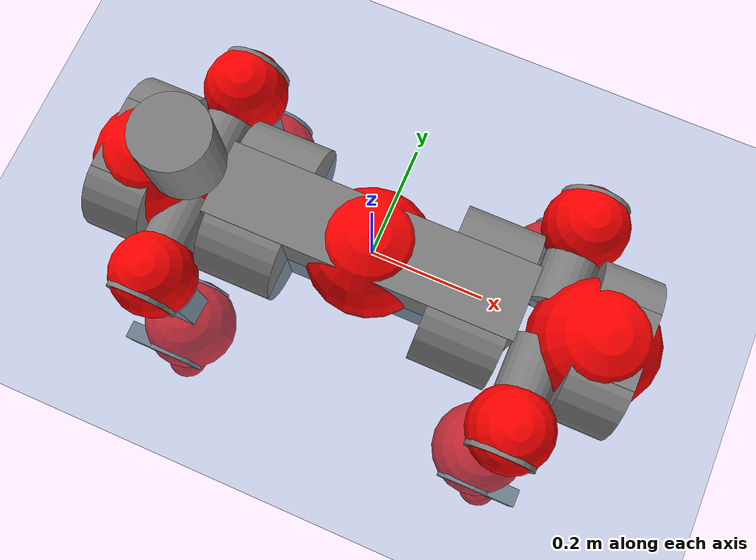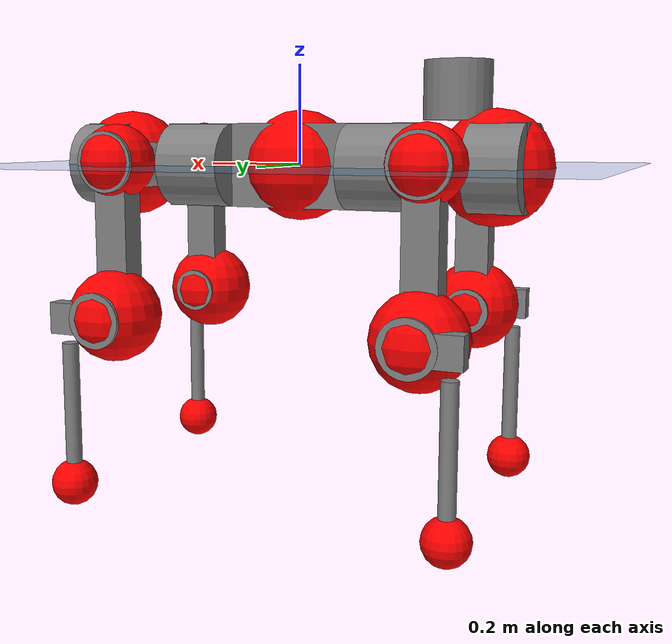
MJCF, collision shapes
<mujoco model="anymal_c">
  <compiler angle="radian" assetdir="assets" balanceinertia="true" inertiafromgeom="false"/>

  <option timestep="0.005" density="1.2" viscosity="2e-05"/>

  <size nkey="1"/>

  <visual>
    <quality shadowsize="8192"/>
    <map shadowclip="0.5"/>
  </visual>

  <default>
    <default class="/">
      <material specular="0" shininess="0.25"/>
      <geom contype="0" conaffinity="0" group="1" solref="-1000 -80"/>
      <site size="0.01 0.005 0.005" group="5"/>
      <general forcelimited="true" forcerange="-80 80" biastype="affine" gainprm="80" biasprm="0 -80 -2"/>
      <default class="anymal_c">
        <joint armature="0.01" damping="0.01" frictionloss="0.1"/>
        <default class="visual">
          <geom type="mesh" group="2"/>
          <default class="visual_zflip"/>
        </default>
        <default class="collision">
          <geom type="cylinder" group="3"/>
          <default class="foot">
            <geom size="0.03 0 0" type="sphere" condim="6" priority="1" friction="0.8 0.02 0.01" solimp="0.015 1 0.03"/>
          </default>
        </default>
      </default>
      <default class="reward_collision_sphere">
        <geom group="5" rgba="1 0 0 1"/>
      </default>
    </default>
  </default>

  <asset>
    <texture type="skybox" colorspace="auto" name="//unnamed_texture_0" builtin="gradient" rgb1="0.95 0.95 0.95" rgb2="0.95 0.95 0.95" width="100" height="600"/>
    <texture type="2d" colorspace="auto" name="texplane" builtin="checker" rgb1="0.345 0.575 0.748" rgb2="0.345 0.575 0.748" markrgb="1 1 1" width="512" height="512"/>
    <texture type="2d" colorspace="linear" name="base" file="base.png"/>
    <texture type="2d" colorspace="linear" name="top_shell" file="top_shell.png"/>
    <texture type="2d" colorspace="linear" name="bottom_shell" file="bottom_shell.png"/>
    <texture type="2d" colorspace="linear" name="remote" file="remote.png"/>
    <texture type="2d" colorspace="linear" name="hatch" file="hatch.png"/>
    <texture type="2d" colorspace="linear" name="handle" file="handle.png"/>
    <texture type="2d" colorspace="linear" name="face" file="face.png"/>
    <texture type="2d" colorspace="linear" name="battery" file="battery.png"/>
    <texture type="2d" colorspace="linear" name="lidar_cage" file="lidar_cage.png"/>
    <texture type="2d" colorspace="linear" name="depth_camera" file="depth_camera.png"/>
    <texture type="2d" colorspace="linear" name="wide_angle_camera" file="wide_angle_camera.png"/>
    <texture type="2d" colorspace="linear" name="lidar" file="lidar.png"/>
    <texture type="2d" colorspace="linear" name="drive" file="drive.png"/>
    <texture type="2d" colorspace="linear" name="hip_l" file="hip_l.png"/>
    <texture type="2d" colorspace="linear" name="shank_l" file="shank_l.png"/>
    <texture type="2d" colorspace="linear" name="foot" file="foot.png"/>
    <texture type="2d" colorspace="linear" name="thigh" file="thigh.png"/>
    <texture type="2d" colorspace="linear" name="shank_r" file="shank_r.png"/>
    <texture type="2d" colorspace="linear" name="hip_r" file="hip_r.png"/>
    <material name="MatPlane" class="/" texture="texplane" texuniform="true" texrepeat="2 2" specular="0.9" shininess="0.5"/>
    <material name="black_plastic" class="/" rgba="0.007 0.007 0.007 1"/>
    <material name="green" class="/" rgba="0.052 0.178 0.033 1"/>
    <material name="red" class="/" rgba="0.178 0.006 0.005 1"/>
    <material name="yellow" class="/" rgba="0.178 0.119 0.006 1"/>
    <material name="lwl" class="/" rgba="0.8 0.8 0.8 1"/>
    <material name="base" class="/" texture="base"/>
    <material name="top_shell" class="/" texture="top_shell"/>
    <material name="bottom_shell" class="/" texture="bottom_shell"/>
    <material name="hip_l" class="/" texture="hip_l"/>
    <material name="thigh" class="/" texture="thigh"/>
    <material name="shank_l" class="/" texture="shank_l"/>
    <material name="foot" class="/" texture="foot"/>
    <material name="hip_r" class="/" texture="hip_r"/>
    <material name="shank" class="/" texture="shank_r"/>
    <material name="hatch" class="/" texture="hatch"/>
    <material name="remote" class="/" texture="remote"/>
    <material name="handle" class="/" texture="handle"/>
    <material name="face" class="/" texture="face"/>
    <material name="depth_camera" class="/" texture="depth_camera"/>
    <material name="wide_angle_camera" class="/" texture="wide_angle_camera"/>
    <material name="battery" class="/" texture="battery"/>
    <material name="lidar_cage" class="/" texture="lidar_cage"/>
    <material name="lidar" class="/" texture="lidar"/>
    <material name="drive" class="/" texture="drive"/>
    <mesh name="base_0" class="/" file="base_0.obj"/>
    <mesh name="base_1" class="/" file="base_1.obj"/>
    <mesh name="base_2" class="/" file="base_2.obj"/>
    <mesh name="base_3" class="/" file="base_3.obj"/>
    <mesh name="base_4" class="/" file="base_4.obj"/>
    <mesh name="base_5" class="/" file="base_5.obj"/>
    <mesh name="top_shell" class="/" file="top_shell.obj"/>
    <mesh name="bottom_shell" class="/" file="bottom_shell.obj"/>
    <mesh name="remote" class="/" file="remote.obj"/>
    <mesh name="handle" class="/" file="handle.obj"/>
    <mesh name="face" class="/" file="face.obj"/>
    <mesh name="wide_angle_camera" class="/" file="wide_angle_camera.obj"/>
    <mesh name="depth_camera" class="/" file="depth_camera.obj"/>
    <mesh name="battery" class="/" file="battery.obj"/>
    <mesh name="lidar_cage" class="/" file="lidar_cage.obj"/>
    <mesh name="lidar" class="/" file="lidar.obj"/>
    <mesh name="drive" class="/" file="drive.obj"/>
    <mesh name="hip_l" class="/" file="hip_l.obj"/>
    <mesh name="thigh" class="/" file="thigh.obj"/>
    <mesh name="shank_l" class="/" file="shank_l.obj"/>
    <mesh name="foot" class="/" file="foot.obj"/>
    <mesh name="hip_r" class="/" file="hip_r.obj"/>
    <mesh name="hatch" class="/" file="hatch.obj"/>
    <mesh name="shank_r" class="/" file="shank_r.obj"/>
  </asset>

  <worldbody>
    <geom name="floor" class="/" size="100 100 0.125" type="plane" group="0" material="MatPlane"/>
    <light name="toplight_shadow" class="/" pos="0 0 5" dir="0.0990148 0.0990148 -0.990148" type="directional" ambient="0.04 0.04 0.04" diffuse="0.55 0.55 0.55" specular="0.12 0.12 0.12"/>
    <light name="toplight_fill" class="/" pos="0 0 5" dir="0.0990148 0.0990148 -0.990148" type="directional" castshadow="false" ambient="0.04 0.04 0.04" diffuse="0.3 0.3 0.3" specular="0.08 0.08 0.08"/>
    <body name="trunk" childclass="anymal_c" pos="-0.00267638 -0.00107191 -0.00172218" quat="0.999999 0.000834811 -0.000342609 -0.000800803">
      <inertial pos="5.48735e-05 0.00168089 0.0537813" quat="0.491109 0.495244 0.506439 0.507015" mass="15.2777" diaginertia="0.35854 0.227719 0.332472"/>
      <joint name="//unnamed_joint_0" type="free" armature="0" damping="0" frictionloss="0"/>
      <geom name="//unnamed_geom_1" class="visual" material="green" mesh="base_0"/>
      <geom name="//unnamed_geom_2" class="visual" material="yellow" mesh="base_1"/>
      <geom name="//unnamed_geom_3" class="visual" material="red" mesh="base_2"/>
      <geom name="//unnamed_geom_4" class="visual" material="black_plastic" mesh="base_3"/>
      <geom name="//unnamed_geom_5" class="visual" material="lwl" mesh="base_4"/>
      <geom name="//unnamed_geom_6" class="visual" material="base" mesh="base_5"/>
      <geom name="trunk_1" class="collision" size="0.270107 0.0651982 0.0838263" type="box"/>
      <geom name="trunk_2" class="collision" size="0.0838263 0.0675267" pos="0.193097 0.0573974 0" quat="0.707107 0 0.707107 0"/>
      <geom name="trunk_3" class="collision" size="0.0838263 0.0675267" pos="-0.193097 0.0573974 0" quat="0.707107 0 0.707107 0"/>
      <geom name="trunk_4" class="collision" size="0.0838263 0.0675267" pos="0.193097 -0.0573974 0" quat="0.707107 0 0.707107 0"/>
      <geom name="trunk_5" class="collision" size="0.0838263 0.0675267" pos="-0.193097 -0.0573974 0" quat="0.707107 0 0.707107 0"/>
      <geom name="//unnamed_geom_12" class="visual" material="top_shell" mesh="top_shell"/>
      <geom name="//unnamed_geom_13" class="visual" material="bottom_shell" mesh="bottom_shell"/>
      <geom name="//unnamed_geom_14" class="visual" material="remote" mesh="remote"/>
      <geom name="//unnamed_geom_15" class="visual" material="handle" mesh="handle"/>
      <geom name="//unnamed_geom_16" class="visual" pos="0.367995 0 0" quat="1 0 0 0" material="face" mesh="face"/>
      <geom name="trunk_6" class="collision" size="0.0512272 0.0651982 0.0838263" pos="0.416824 0 0" type="box"/>
      <geom name="//unnamed_geom_18" class="collision" size="0.0838263 0.0512272" pos="0.416824 0.0573974 0" quat="0.707107 0 0.707107 0"/>
      <geom name="//unnamed_geom_19" class="collision" size="0.0838263 0.0512272" pos="0.416824 -0.0573974 0" quat="0.707107 0 0.707107 0"/>
      <geom name="//unnamed_geom_20" class="visual" pos="0.409863 0 -0.0332338" quat="0.965926 0 0.258819 0" material="depth_camera" mesh="depth_camera"/>
      <geom name="//unnamed_geom_21" class="visual" pos="0.455444 0 0.016264" material="wide_angle_camera" mesh="wide_angle_camera"/>
      <geom name="//unnamed_geom_22" class="visual_zflip" pos="-0.367995 0 0" quat="0 0 0 1" material="face" mesh="face"/>
      <geom name="trunk_7" class="collision" size="0.0512272 0.0651982 0.0838263" pos="-0.416824 0 0" quat="0 0 0 1" type="box"/>
      <geom name="//unnamed_geom_24" class="collision" size="0.0838263 0.0512272" pos="-0.416824 -0.0573974 0" quat="0 -0.707107 0 0.707107"/>
      <geom name="//unnamed_geom_25" class="collision" size="0.0838263 0.0512272" pos="-0.416824 0.0573974 0" quat="0 -0.707107 0 0.707107"/>
      <geom name="//unnamed_geom_26" class="visual" pos="-0.409863 0 -0.0332338" quat="0 -0.258819 0 0.965926" material="depth_camera" mesh="depth_camera"/>
      <geom name="//unnamed_geom_27" class="visual_zflip" pos="-0.455444 0 0.016264" quat="0 0 0 1" material="wide_angle_camera" mesh="wide_angle_camera"/>
      <geom name="//unnamed_geom_28" class="visual" material="battery" mesh="battery"/>
      <geom name="//unnamed_geom_29" class="visual" pos="0 0.0618123 0.0300515" quat="0.683013 -0.183013 0.183013 0.683013" material="depth_camera" mesh="depth_camera"/>
      <geom name="//unnamed_geom_30" class="visual" pos="0 -0.0618123 0.0300515" quat="0.683013 0.183013 0.183013 -0.683013" material="depth_camera" mesh="depth_camera"/>
      <geom name="//unnamed_geom_31" class="visual" pos="-0.323161 0 0.0798535" quat="1 0 0 0" material="lidar_cage" mesh="lidar_cage"/>
      <geom name="trunk_8" class="collision" size="0.0651982 0.0558842" pos="-0.323161 0 0.14504"/>
      <geom name="//unnamed_geom_33" class="visual" pos="-0.323161 -2.66534e-05 0.154492" quat="0.707107 0 0 -0.707107" material="lidar" mesh="lidar"/>
      <geom name="//unnamed_geom_34" class="visual" pos="0.266253 0.0853707 -4.59681e-09" quat="0.258819 0.965926 0 0" material="drive" mesh="drive"/>
      <geom name="//unnamed_geom_35" class="visual" pos="0.266253 -0.0853707 4.59681e-09" quat="0.258819 -0.965926 0 0" material="drive" mesh="drive"/>
      <geom name="//unnamed_geom_36" class="visual" pos="-0.266253 0.0853707 4.59681e-09" quat="0 0 0.965926 -0.258819" material="drive" mesh="drive"/>
      <geom name="//unnamed_geom_37" class="visual" pos="-0.266253 -0.0853707 -4.59681e-09" quat="0 0 -0.965926 -0.258819" material="drive" mesh="drive"/>
      <geom name="//unnamed_geom_38" class="visual" pos="0.102985 0 0.0793103" quat="1 0 0 0" material="hatch" mesh="hatch"/>
      <geom name="//unnamed_geom_39" class="reward_collision_sphere" size="0.111768"/>
      <geom name="//unnamed_geom_40" class="reward_collision_sphere" size="0.111768" pos="0.399512 0 0"/>
      <geom name="//unnamed_geom_41" class="reward_collision_sphere" size="0.111768" pos="-0.399512 0 0"/>
      <site name="imu" pos="0.231027 -0.00306413 0.0476279" size="0.00931403"/>
      <camera name="track" pos="0 -1.63992 0" quat="0.707107 0.707107 0 0" mode="trackcom"/>
      <camera name="ego_camera" pos="0.399512 0 -0.0434577" quat="-0.5 -0.5 0.5 0.5"/>
      <body name="LF_HIP" pos="0.267151 0.0859722 -0.00258536" quat="0.259016 0.965872 -0.000679533 -0.00101745">
        <inertial pos="0.0486179 -0.0127931 -0.00850321" quat="-0.130127 0.718566 -0.13677 0.669346" mass="2.32133" diaginertia="0.00332908 0.00187981 0.00525434"/>
        <joint name="LF_HAA" pos="0 0 0" axis="0.999907 0.013668 6.0534e-05" stiffness="0.00173623" range="-0.667465 0.491799" armature="0.0106825" damping="0.00501857" frictionloss="0.0981573"/>
        <geom name="//unnamed_geom_42" class="visual" pos="0 -0.00027041 4.44146e-05" quat="0.258819 -0.965926 0 0" material="hip_l" mesh="hip_l"/>
        <geom name="//unnamed_geom_43" class="visual" pos="0.0531795 -0.0636397 -0.0387134" quat="0.183013 -0.683013 0.683013 0.183013" material="drive" mesh="drive"/>
        <geom name="//unnamed_geom_44" class="collision" size="0.0465701 0.0651982" pos="0.0531795 -0.00980658 -0.00750188" quat="-0.353553 -0.612372 0.612372 -0.353553"/>
        <body name="LF_THIGH" pos="0.0533778 -0.0596926 -0.0466515" quat="0.183058 -0.683051 0.682889 0.183288">
          <inertial pos="0.0272005 -0.00249128 -0.268849" quat="0.993189 -0.00573566 -0.0808477 0.0837065" mass="2.51086" diaginertia="0.0164553 0.0107973 0.00625404"/>
          <joint name="LF_HFE" pos="0 0 0" axis="1 0.000869002 -0.000437597" stiffness="0.00566923" range="-3.14664 3.18368" armature="0.00852326" damping="0" frictionloss="0.0932495"/>
          <geom name="//unnamed_geom_45" class="visual" pos="0.00134979 2.12696e-06 0" quat="0.707107 0 0 -0.707107" material="thigh" mesh="thigh"/>
          <geom name="//unnamed_geom_46" class="collision" size="0.0605412 0.0372561" pos="0.0355122 0 0" quat="0.5 0.5 -0.5 -0.5"/>
          <geom name="//unnamed_geom_47" class="collision" size="0.0349276 0.0279421 0.13162" pos="0.0266341 0 -0.15353" quat="0.707107 0 0 -0.707107" type="box"/>
          <geom name="//unnamed_geom_48" class="visual" pos="0.0890468 0 -0.309636" quat="1 0 0 0" material="drive" mesh="drive"/>
          <geom name="//unnamed_geom_49" class="collision" size="0.0465701 0.0651982" pos="0.0269005 0 -0.309636" quat="0.707107 0 0.707107 0"/>
          <geom name="//unnamed_geom_50" class="reward_collision_sphere" size="0.0745122" pos="0.0221951 0 0"/>
          <body name="LF_SHANK" pos="0.0907694 0.00183581 -0.307165" quat="1 6.83447e-05 6.44609e-05 5.39273e-05">
            <inertial pos="0.00497957 -0.052167 -0.0851242" quat="0.992853 -0.11681 -0.00191795 -0.0243859" mass="0.494177" diaginertia="0.00582701 0.00347693 0.00169833"/>
            <joint name="LF_KFE" pos="0 0 0" axis="0.999999 -0.000805918 -0.00145161" range="-3.0901 3.08515" armature="0.00917047" damping="0.00982986" frictionloss="0.0978805"/>
            <geom name="//unnamed_geom_51" class="visual" pos="0.000440138 0.00234684 0" quat="0.707107 0 0 -0.707107" material="shank_l" mesh="shank_l"/>
            <geom name="LF_kfe_act" class="collision" size="0.0558842 0.0186281" pos="0.0177561 0 0" quat="0.5 0.5 -0.5 -0.5"/>
            <geom name="//unnamed_geom_53" class="collision" size="0.0535547 0.0314348 0.0176967" pos="0.0177561 -0.047147 0" quat="0.5 0.5 -0.5 -0.5" type="box"/>
            <geom name="//unnamed_geom_54" class="visual" pos="0.0115857 -0.0713594 -0.367185" quat="0.382683 0 0 -0.92388" material="foot" mesh="foot"/>
            <geom name="LF_calf" class="collision" size="0.0162996 0.131563" pos="0.0115858 -0.0721157 -0.183592" quat="0.707107 0 0 -0.707107"/>
            <geom name="LF_foot" class="foot" size="0.0267612" pos="0.0115858 -0.0721157 -0.34274" quat="0.707107 0 0 -0.707107"/>
            <geom name="//unnamed_geom_57" class="reward_collision_sphere" size="0.0931403" pos="-0.0443902 0 0"/>
            <geom name="//unnamed_geom_58" class="reward_collision_sphere" size="0.0465701" pos="0.0115858 -0.0721157 -0.34274"/>
            <site name="LF_foot" class="foot" pos="0.0115858 -0.0721157 -0.34274" quat="0.707107 0 0 -0.707107" size="0.00931403"/>
          </body>
        </body>
      </body>
      <body name="RF_HIP" pos="0.268658 -0.0839363 0.00271542" quat="0.258819 -0.965926 1.27973e-06 -3.30411e-06">
        <inertial pos="0.0508609 0.0105227 -0.00859561" quat="0.136845 0.688144 0.127348 0.701081" mass="2.32395" diaginertia="0.00325449 0.00190366 0.00507033"/>
        <joint name="RF_HAA" pos="0 0 0" axis="0.999997 0.002206 -0.0011326" stiffness="0.000402099" range="-0.438975 0.7179" armature="0.00935875" damping="0.00960137" frictionloss="0.0945598"/>
        <geom name="//unnamed_geom_59" class="visual" pos="0 0.000270407 4.44144e-05" quat="0.258819 0.965926 0 0" material="hip_r" mesh="hip_r"/>
        <geom name="//unnamed_geom_60" class="visual" pos="0.0531795 0.0636397 -0.0387134" quat="0.183013 0.683013 0.683013 -0.183013" material="drive" mesh="drive"/>
        <geom name="//unnamed_geom_61" class="collision" size="0.0465701 0.0651982" pos="0.0531795 0.00980658 -0.00750188" quat="-0.353553 0.612372 0.612372 0.353553"/>
        <body name="RF_THIGH" pos="0.0550889 0.0618223 -0.0487565" quat="0.183103 0.683091 0.68294 -0.182899">
          <inertial pos="0.0277568 4.83196e-06 -0.26915" quat="0.992551 -0.000504854 -0.0759225 0.0952836" mass="2.55949" diaginertia="0.0168069 0.0114105 0.00652106"/>
          <joint name="RF_HFE" pos="0 0 0" axis="0.999996 0.000777735 0.00261994" stiffness="0.00511516" range="-3.19242 3.19471" armature="0.00811703" damping="0.00848819" frictionloss="0.0896627"/>
          <geom name="//unnamed_geom_62" class="visual" pos="0.00134979 2.12696e-06 0" quat="0.707107 0 0 -0.707107" material="thigh" mesh="thigh"/>
          <geom name="//unnamed_geom_63" class="collision" size="0.0605412 0.0372561" pos="0.0355122 0 0" quat="0.5 0.5 0.5 0.5"/>
          <geom name="//unnamed_geom_64" class="collision" size="0.0349276 0.0279421 0.13162" pos="0.0266341 0 -0.15353" quat="0.707107 0 0 0.707107" type="box"/>
          <geom name="//unnamed_geom_65" class="visual" pos="0.0890468 0 -0.309636" quat="1 0 0 0" material="drive" mesh="drive"/>
          <geom name="//unnamed_geom_66" class="collision" size="0.0465701 0.0651982" pos="0.0269005 0 -0.309636" quat="0.707107 0 0.707107 0"/>
          <geom name="//unnamed_geom_67" class="reward_collision_sphere" size="0.0745122" pos="0.0221951 0 0"/>
          <body name="RF_SHANK" pos="0.0898886 -0.000486644 -0.310418" quat="1 4.3901e-05 -2.59942e-05 -6.90993e-06">
            <inertial pos="0.00423451 0.0504704 -0.0856941" quat="0.992385 0.121749 -0.00402054 0.0182352" mass="0.448344" diaginertia="0.00554553 0.00343152 0.00160033"/>
            <joint name="RF_KFE" pos="0 0 0" axis="0.999999 0.00120694 0.000875193" range="-3.15011 3.0984" armature="0.0106565" damping="0.00832345" frictionloss="0.0927259"/>
            <geom name="//unnamed_geom_68" class="visual" pos="0.000440136 -0.00234683 0" quat="0.707107 0 0 0.707107" material="shank" mesh="shank_r"/>
            <geom name="RF_kfe_act" class="collision" size="0.0558842 0.0186281" pos="0.0177561 0 0" quat="0.5 0.5 0.5 0.5"/>
            <geom name="//unnamed_geom_70" class="collision" size="0.0535547 0.0314348 0.0176967" pos="0.0177561 0.047147 0" quat="0.5 0.5 0.5 0.5" type="box"/>
            <geom name="//unnamed_geom_71" class="visual" pos="0.011586 0.0713594 -0.367185" quat="0.382683 0 0 0.92388" material="foot" mesh="foot"/>
            <geom name="RF_calf" class="collision" size="0.0162996 0.131563" pos="0.0115858 0.0721157 -0.183592" quat="0.707107 0 0 0.707107"/>
            <geom name="RF_foot" class="foot" size="0.0287613" pos="0.0115858 0.0721157 -0.34274" quat="0.707107 0 0 0.707107"/>
            <geom name="//unnamed_geom_74" class="reward_collision_sphere" size="0.0931403" pos="-0.0443902 0 0"/>
            <geom name="//unnamed_geom_75" class="reward_collision_sphere" size="0.0465701" pos="0.0115858 0.0721157 -0.34274"/>
            <site name="RF_foot" class="foot" pos="0.0115858 0.0721157 -0.34274" quat="0.707107 0 0 0.707107" size="0.00931403"/>
          </body>
        </body>
      </body>
      <body name="LH_HIP" pos="-0.26474 0.0846184 -0.00151566" quat="-0.000214248 0.000310945 0.965945 -0.258745">
        <inertial pos="0.0509414 0.0130933 -0.0117342" quat="0.130681 0.677985 0.129841 0.711618" mass="2.35032" diaginertia="0.00338557 0.00178796 0.00500506"/>
        <joint name="LH_HAA" pos="0 0 0" axis="0.999999 0.000720011 -0.00131261" range="-0.44927 0.775677" armature="0.00938062" damping="0" frictionloss="0.105602"/>
        <geom name="//unnamed_geom_76" class="visual" pos="0 0.000270407 4.44144e-05" quat="-0.258819 -0.965926 0 0" material="hip_r" mesh="hip_r"/>
        <geom name="//unnamed_geom_77" class="visual" pos="0.0531795 0.0636397 -0.0387134" quat="0.183013 0.683013 0.683013 -0.183013" material="drive" mesh="drive"/>
        <geom name="//unnamed_geom_78" class="collision" size="0.0465701 0.0651982" pos="0.0531795 0.00980658 -0.00750188" quat="-0.353553 0.612372 0.612372 0.353553"/>
        <body name="LH_THIGH" pos="0.0528789 0.0599813 -0.0481816" quat="0.182885 0.682866 0.683192 -0.183017">
          <inertial pos="0.0247045 -0.00109032 -0.268786" quat="0.993261 -0.014887 -0.0828217 0.0796966" mass="2.54333" diaginertia="0.0163665 0.0112686 0.0062023"/>
          <joint name="LH_HFE" pos="0 0 0" axis="0.999871 -0.00489554 -0.0152705" range="-3.195 3.15714" armature="0.0095721" damping="0.00887482" frictionloss="0.0906068"/>
          <geom name="//unnamed_geom_79" class="visual" pos="0.00134979 2.12696e-06 0" quat="0.707107 0 0 -0.707107" material="thigh" mesh="thigh"/>
          <geom name="//unnamed_geom_80" class="collision" size="0.0605412 0.0372561" pos="0.0355122 0 0" quat="0.5 0.5 -0.5 -0.5"/>
          <geom name="//unnamed_geom_81" class="collision" size="0.0349276 0.0279421 0.13162" pos="0.0266341 0 -0.15353" quat="0.707107 0 0 -0.707107" type="box"/>
          <geom name="//unnamed_geom_82" class="visual" pos="0.0890468 0 -0.309636" quat="1 0 0 0" material="drive" mesh="drive"/>
          <geom name="//unnamed_geom_83" class="collision" size="0.0465701 0.0651982" pos="0.0269005 0 -0.309636" quat="0.707107 0 0.707107 0"/>
          <geom name="//unnamed_geom_84" class="reward_collision_sphere" size="0.0745122" pos="0.0221951 0 0"/>
          <body name="LH_SHANK" pos="0.0873672 -9.73491e-06 -0.312136" quat="1 -3.45357e-05 -0.000200015 -0.000233975">
            <inertial pos="0.00694692 0.0477821 -0.0851675" quat="0.993829 0.109528 -0.00839565 0.0153925" mass="0.45884" diaginertia="0.00562116 0.00346049 0.00168496"/>
            <joint name="LH_KFE" pos="0 0 0" axis="0.999935 0.00792109 0.00814604" range="-3.14258 3.14117" armature="0.00894437" damping="0.00264667" frictionloss="0.103291"/>
            <geom name="//unnamed_geom_85" class="visual" pos="0.000440136 -0.00234683 0" quat="-0.707107 0 0 -0.707107" material="shank" mesh="shank_r"/>
            <geom name="LH_kfe_act" class="collision" size="0.0558842 0.0186281" pos="0.0177561 0 0" quat="0.5 0.5 -0.5 -0.5"/>
            <geom name="//unnamed_geom_87" class="collision" size="0.0535547 0.0314348 0.0176967" pos="0.0177561 0.047147 0" quat="0.5 0.5 -0.5 -0.5" type="box"/>
            <geom name="//unnamed_geom_88" class="visual" pos="0.011586 0.0713594 -0.367185" quat="-0.382683 0 0 -0.92388" material="foot" mesh="foot"/>
            <geom name="LH_calf" class="collision" size="0.0162996 0.131563" pos="0.0115858 0.0721157 -0.183592" quat="0.707107 0 0 -0.707107"/>
            <geom name="LH_foot" class="foot" size="0.0321691" pos="0.0115858 0.0721157 -0.34274" quat="0.707107 0 0 -0.707107"/>
            <geom name="//unnamed_geom_91" class="reward_collision_sphere" size="0.0931403" pos="-0.0443902 0 0"/>
            <geom name="//unnamed_geom_92" class="reward_collision_sphere" size="0.0465701" pos="0.0115858 0.0721157 -0.34274"/>
            <site name="LH_foot" class="foot" pos="0.0115858 0.0721157 -0.34274" quat="0.707107 0 0 -0.707107" size="0.00931403"/>
          </body>
        </body>
      </body>
      <body name="RH_HIP" pos="-0.266159 -0.085771 0.00166728" quat="-6.75938e-05 -6.17655e-05 -0.965942 -0.258757">
        <inertial pos="0.0508135 -0.00993291 -0.0119481" quat="-0.127674 0.709579 -0.135194 0.679646" mass="2.21776" diaginertia="0.00318182 0.00179339 0.00485342"/>
        <joint name="RH_HAA" pos="0 0 0" axis="1 -0.000281486 -0.000904986" range="-0.714124 0.436897" armature="0.00841204" damping="0" frictionloss="0.0955538"/>
        <geom name="//unnamed_geom_93" class="visual" pos="0 -0.00027041 4.44146e-05" quat="-0.258819 0.965926 0 0" material="hip_l" mesh="hip_l"/>
        <geom name="//unnamed_geom_94" class="visual" pos="0.0531795 -0.0636397 -0.0387134" quat="-0.183013 0.683013 -0.683013 -0.183013" material="drive" mesh="drive"/>
        <geom name="//unnamed_geom_95" class="collision" size="0.0465701 0.0651982" pos="0.0531795 -0.00980658 -0.00750188" quat="0.353553 0.612372 -0.612372 0.353553"/>
        <body name="RH_THIGH" pos="0.0521897 -0.0589265 -0.042883" quat="-0.182978 0.68301 -0.683024 -0.183016">
          <inertial pos="0.0253556 0.002601 -0.266716" quat="0.993275 -0.0049579 -0.0799616 0.0835863" mass="2.31007" diaginertia="0.0163749 0.0108002 0.00632594"/>
          <joint name="RH_HFE" pos="0 0 0" axis="0.999991 -0.00387749 -0.00193344" stiffness="0.0104824" range="-3.19095 3.19607" armature="0.00961752" damping="0.0084584" frictionloss="0.0801379"/>
          <geom name="//unnamed_geom_96" class="visual" pos="0.00134979 2.12696e-06 0" quat="0.707107 0 0 -0.707107" material="thigh" mesh="thigh"/>
          <geom name="//unnamed_geom_97" class="collision" size="0.0605412 0.0372561" pos="0.0355122 0 0" quat="0.5 0.5 0.5 0.5"/>
          <geom name="//unnamed_geom_98" class="collision" size="0.0349276 0.0279421 0.13162" pos="0.0266341 0 -0.15353" quat="0.707107 0 0 0.707107" type="box"/>
          <geom name="//unnamed_geom_99" class="visual" pos="0.0890468 0 -0.309636" quat="1 0 0 0" material="drive" mesh="drive"/>
          <geom name="//unnamed_geom_100" class="collision" size="0.0465701 0.0651982" pos="0.0269005 0 -0.309636" quat="0.707107 0 0.707107 0"/>
          <geom name="//unnamed_geom_101" class="reward_collision_sphere" size="0.0745122" pos="0.0221951 0 0"/>
          <body name="RH_SHANK" pos="0.0910139 0.00165582 -0.307627" quat="1 0.000580868 0.000183592 0.000242532">
            <inertial pos="0.00543595 -0.0500321 -0.0874663" quat="0.99267 -0.118719 -0.00426367 -0.0222095" mass="0.444432" diaginertia="0.00548291 0.00334429 0.00163285"/>
            <joint name="RH_KFE" pos="0 0 0" axis="0.999995 0.00266143 -0.00188957" range="-3.1272 3.17761" armature="0.00870336" damping="0.000653015" frictionloss="0.0905809"/>
            <geom name="//unnamed_geom_102" class="visual" pos="0.000440138 0.00234684 0" quat="0.707107 0 0 -0.707107" material="shank_l" mesh="shank_l"/>
            <geom name="RH_kfe_act" class="collision" size="0.0558842 0.0186281" pos="0.0177561 0 0" quat="0.5 0.5 0.5 0.5"/>
            <geom name="//unnamed_geom_104" class="collision" size="0.0535547 0.0314348 0.0176967" pos="0.0177561 -0.047147 0" quat="0.5 0.5 0.5 0.5" type="box"/>
            <geom name="//unnamed_geom_105" class="visual" pos="0.0115857 -0.0713594 -0.367185" quat="0.382683 0 0 -0.92388" material="foot" mesh="foot"/>
            <geom name="RH_calf" class="collision" size="0.0162996 0.131563" pos="0.0115858 -0.0721157 -0.183592" quat="0.707107 0 0 0.707107"/>
            <geom name="RH_foot" class="foot" size="0.0269392" pos="0.0115858 -0.0721157 -0.34274" quat="0.707107 0 0 0.707107"/>
            <geom name="//unnamed_geom_108" class="reward_collision_sphere" size="0.0931403" pos="-0.0443902 0 0"/>
            <geom name="//unnamed_geom_109" class="reward_collision_sphere" size="0.0465701" pos="0.0115858 -0.0721157 -0.34274"/>
            <site name="RH_foot" class="foot" pos="0.0115858 -0.0721157 -0.34274" quat="0.707107 0 0 0.707107" size="0.00931403"/>
          </body>
        </body>
      </body>
    </body>
  </worldbody>

  <contact>
    <pair class="/" geom1="floor" geom2="LF_foot" name="//unnamed_contact_0"/>
    <pair class="/" geom1="floor" geom2="RF_foot" name="//unnamed_contact_1"/>
    <pair class="/" geom1="floor" geom2="LH_foot" name="//unnamed_contact_2"/>
    <pair class="/" geom1="floor" geom2="RH_foot" name="//unnamed_contact_3"/>
  </contact>

  <actuator>
    <general name="LF_HAA" class="/" joint="LF_HAA" forcerange="-73.2488 73.2488" gainprm="70.6699" biasprm="0 -70.6699 -1.95796"/>
    <general name="LF_HFE" class="/" joint="LF_HFE" forcerange="-82.0964 82.0964" gainprm="70.6699" biasprm="0 -70.6699 -1.95796"/>
    <general name="LF_KFE" class="/" joint="LF_KFE" forcerange="-66.5845 66.5845" gainprm="70.6699" biasprm="0 -70.6699 -1.95796"/>
    <general name="RF_HAA" class="/" joint="RF_HAA" forcerange="-72.0103 72.0103" gainprm="70.6699" biasprm="0 -70.6699 -1.95796"/>
    <general name="RF_HFE" class="/" joint="RF_HFE" forcerange="-83.1429 83.1429" gainprm="70.6699" biasprm="0 -70.6699 -1.95796"/>
    <general name="RF_KFE" class="/" joint="RF_KFE" forcerange="-79.3322 79.3322" gainprm="70.6699" biasprm="0 -70.6699 -1.95796"/>
    <general name="LH_HAA" class="/" joint="LH_HAA" forcerange="-81.803 81.803" gainprm="70.6699" biasprm="0 -70.6699 -1.95796"/>
    <general name="LH_HFE" class="/" joint="LH_HFE" forcerange="-80.3471 80.3471" gainprm="70.6699" biasprm="0 -70.6699 -1.95796"/>
    <general name="LH_KFE" class="/" joint="LH_KFE" forcerange="-71.1046 71.1046" gainprm="70.6699" biasprm="0 -70.6699 -1.95796"/>
    <general name="RH_HAA" class="/" joint="RH_HAA" forcerange="-75.4798 75.4798" gainprm="70.6699" biasprm="0 -70.6699 -1.95796"/>
    <general name="RH_HFE" class="/" joint="RH_HFE" forcerange="-68.6909 68.6909" gainprm="70.6699" biasprm="0 -70.6699 -1.95796"/>
    <general name="RH_KFE" class="/" joint="RH_KFE" forcerange="-66.9381 66.9381" gainprm="70.6699" biasprm="0 -70.6699 -1.95796"/>
  </actuator>

  <sensor>
    <gyro site="imu" name="imu_angular_velocity"/>
    <velocimeter site="imu" name="imu_linear_velocity"/>
    <framelinvel objtype="site" objname="LF_foot" name="LF_foot_global_linear_velocity"/>
    <framelinvel objtype="site" objname="RF_foot" name="RF_foot_global_linear_velocity"/>
    <framelinvel objtype="site" objname="LH_foot" name="LH_foot_global_linear_velocity"/>
    <framelinvel objtype="site" objname="RH_foot" name="RH_foot_global_linear_velocity"/>
  </sensor>

  <keyframe>
    <key name="home" qpos="0 0 0.55 1 0 0 0 0 0.4 -0.8 0 -0.4 0.8 0 -0.4 0.8 0 0.4 -0.8"/>
  </keyframe>
</mujoco>
